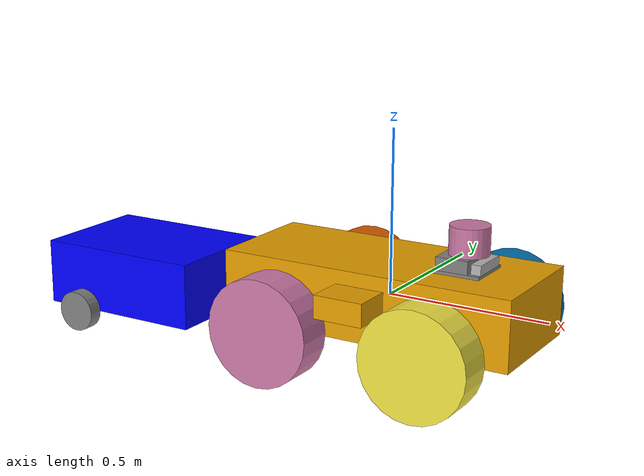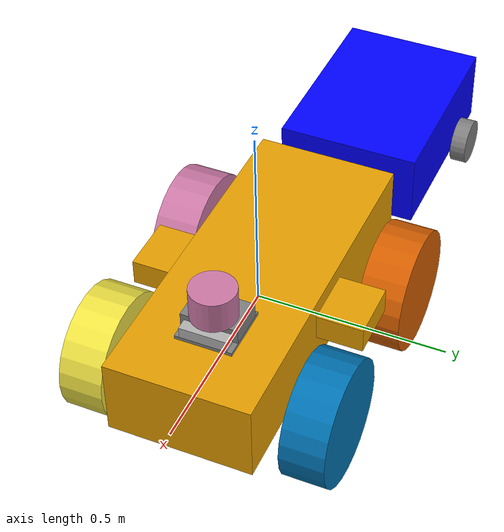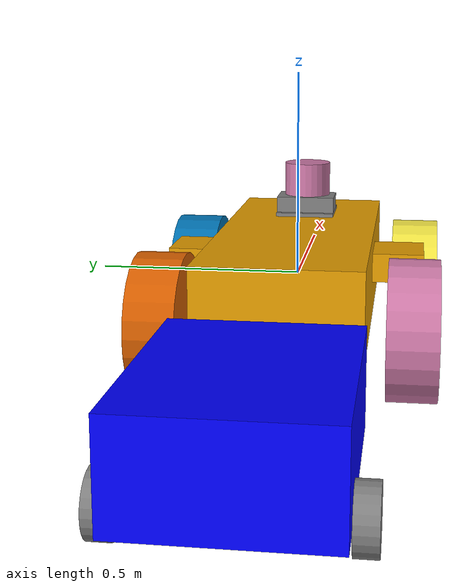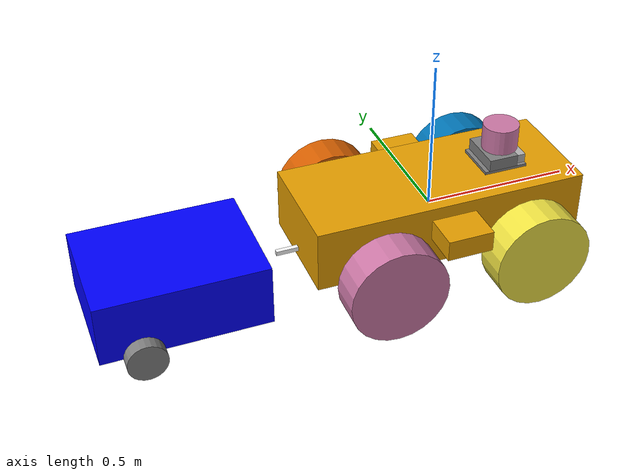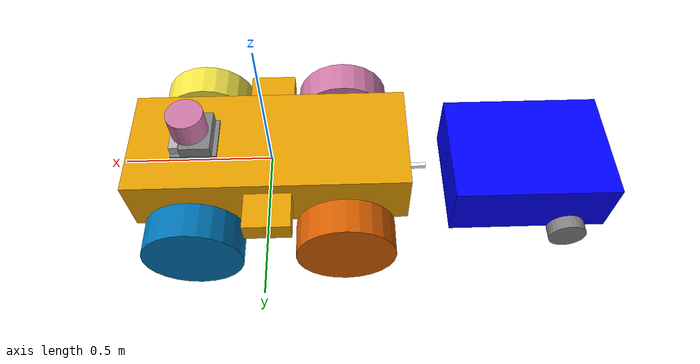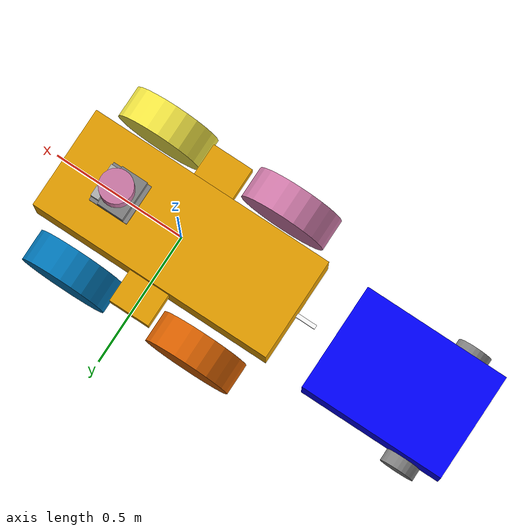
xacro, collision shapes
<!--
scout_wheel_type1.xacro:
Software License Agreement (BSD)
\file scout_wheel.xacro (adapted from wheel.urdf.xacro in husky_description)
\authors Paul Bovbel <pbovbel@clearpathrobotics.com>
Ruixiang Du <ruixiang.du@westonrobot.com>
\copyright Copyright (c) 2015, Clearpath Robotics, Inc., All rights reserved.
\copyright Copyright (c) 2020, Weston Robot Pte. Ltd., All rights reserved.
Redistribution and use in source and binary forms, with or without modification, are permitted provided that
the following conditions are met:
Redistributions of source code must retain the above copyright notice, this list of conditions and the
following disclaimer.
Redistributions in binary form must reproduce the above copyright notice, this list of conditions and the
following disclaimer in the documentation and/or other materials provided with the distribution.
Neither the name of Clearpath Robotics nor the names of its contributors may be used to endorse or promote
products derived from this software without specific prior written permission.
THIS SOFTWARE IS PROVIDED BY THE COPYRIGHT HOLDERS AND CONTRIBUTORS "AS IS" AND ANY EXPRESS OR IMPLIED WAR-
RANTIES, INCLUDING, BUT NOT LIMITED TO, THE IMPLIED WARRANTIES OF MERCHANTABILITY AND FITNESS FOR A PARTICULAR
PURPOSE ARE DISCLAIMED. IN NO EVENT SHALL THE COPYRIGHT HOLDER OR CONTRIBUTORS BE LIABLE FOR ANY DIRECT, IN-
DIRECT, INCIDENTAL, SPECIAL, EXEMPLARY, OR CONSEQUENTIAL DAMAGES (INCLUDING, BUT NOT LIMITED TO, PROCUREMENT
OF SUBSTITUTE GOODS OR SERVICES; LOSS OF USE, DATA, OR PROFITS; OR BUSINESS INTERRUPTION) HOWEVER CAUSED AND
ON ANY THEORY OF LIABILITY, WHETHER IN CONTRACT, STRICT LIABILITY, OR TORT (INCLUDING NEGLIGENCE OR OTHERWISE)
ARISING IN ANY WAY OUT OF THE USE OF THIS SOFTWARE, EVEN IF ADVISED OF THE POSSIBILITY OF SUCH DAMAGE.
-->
<?xml version="1.0"?>

<robot name="scout_v2"
    xmlns:xacro="http://ros.org/wiki/xacro">

    <xacro:arg name="robot_namespace" default="/" />

    <xacro:include filename="$(find scout_nav2_gz)/urdf/scout_v2/scout_wheel_type1.xacro" />
    <xacro:include filename="$(find scout_nav2_gz)/urdf/scout_v2/scout_wheel_type2.xacro" />

    <!-- Variables -->
    <xacro:property name="M_PI" value="3.14159"/>

    <!-- Vehicle Geometries -->
    <xacro:property name="base_x_size" value="0.9250000" />
    <xacro:property name="base_y_size" value="0.380000" />
    <xacro:property name="base_z_size" value="0.210000" />

    <xacro:property name="wheelbase" value="0.498" />
    <xacro:property name="track" value="0.58306" />
    <xacro:property name="wheel_vertical_offset" value="-0.0702" />

    <xacro:property name="wheel_length" value="1.1653e-01" />
    <xacro:property name="wheel_radius" value="1.6459e-01" />
    <xacro:property name="wheel_mass" value="0.6"/>

    <xacro:property name="trailer_wheel_length" value="0.045" />
    <xacro:property name="trailer_wheel_radius" value="0.065" />
    <xacro:property name="trailer_wheel_mass" value="0.6"/>

    <xacro:property name="connector_length" value="0.15"/>
    <xacro:property name="connector_width" value="0.015"/>
    <xacro:property name="connector_height" value="0.015"/>

    <xacro:property name="trailer_length" value="0.55"/>
    <xacro:property name="trailer_width" value="0.4"/>
    <xacro:property name="trailer_height" value="${base_z_size}"/>

    <!-- Define inertial property macros  -->
    <xacro:macro name="box_inertia" params="m w h d">
        <inertial>
        <origin xyz="0 0 0" rpy="${pi/2} 0 ${pi/2}"/>
        <mass value="${m}"/>
        <inertia ixx="${(m/12) * (h*h + d*d)}" ixy="0.0" ixz="0.0" iyy="${(m/12) * (w*w + d*d)}" iyz="0.0" izz="${(m/12) * (w*w + h*h)}"/>
        </inertial>
    </xacro:macro>

    <xacro:macro name="cylinder_inertia" params="m r h">
        <inertial>
        <origin xyz="0 0 0" rpy="${pi/2} 0 0" />
        <mass value="${m}"/>
        <inertia ixx="${(m/12) * (3*r*r + h*h)}" ixy = "0" ixz = "0" iyy="${(m/12) * (3*r*r + h*h)}" iyz = "0" izz="${(m/2) * (r*r)}"/>
        </inertial>
    </xacro:macro>

    <xacro:macro name="sphere_inertia" params="m r">
        <inertial>
        <mass value="${m}"/>
        <inertia ixx="${(2/5) * m * (r*r)}" ixy="0.0" ixz="0.0" iyy="${(2/5) * m * (r*r)}" iyz="0.0" izz="${(2/5) * m * (r*r)}"/>
        </inertial>
    </xacro:macro>

    <xacro:macro name="wheel_inertia" params="mass radius">
        <inertial>
        <mass value="${mass}"/>
        <inertia ixx="${(2/5) * mass * (radius * radius)}" ixy="0" ixz="0"
                    iyy="${(2/5) * mass * (radius * radius)}" iyz="0"
                    izz="${(2/5) * mass * (radius * radius)}" />
        </inertial>
    </xacro:macro>

    <!-- Base link -->
    <link name="base_link">
        <visual>
            <origin xyz="0 0 0" rpy="0 0 0" />
            <geometry>
                <mesh filename="file://$(find scout_nav2_gz)/meshes/scout_v2/base_link.dae" />
            </geometry>
        </visual>
        <collision>
            <origin xyz="0 0 0.008" rpy="0 0 0" />
            <geometry>
                <box size="${base_x_size} ${base_y_size} ${base_z_size}"/>
            </geometry>
        </collision>
        <collision>
            <origin xyz="0 0 ${base_z_size/6}" rpy="0 0 0" />
            <geometry>
                <box size="${base_x_size/6} ${base_y_size*1.65} ${base_z_size/3}"/>
            </geometry>
        </collision>
    </link>

    <link name="base_footprint"/>

    <joint name="base_footprint_joint" type="fixed">
        <origin xyz="0 0 ${wheel_vertical_offset - wheel_radius}" rpy="0 0 0" />
        <parent link="base_link" />
        <child link="base_footprint" />
    </joint>

    <link name="inertial_link">
        <inertial>
            <mass value="40" />
            <origin xyz="0.0 0.0 0.0" />
            <inertia ixx="2.288641" ixy="0" ixz="0" iyy="5.103976" iyz="0" izz="3.431465" />
        </inertial>
    </link>

    <joint name="inertial_joint" type="fixed">
        <origin xyz="0 0 0" rpy="0 0 0" />
        <parent link="base_link" />
        <child link="inertial_link" />
    </joint>

    <!-- Scout wheel macros -->
    <!-- wheel labeled from 0 to 3, conter-clockwise, starting from front right wheel -->
    <!-- motor 1 and 2 (left side) are mechanically installed in a reversed direction -->
    <xacro:scout_wheel_type1 wheel_prefix="front_right">
        <origin xyz="${wheelbase/2} ${-track/2} ${wheel_vertical_offset}" rpy="3.14 0 0" />
    </xacro:scout_wheel_type1>
    <xacro:scout_wheel_type2 wheel_prefix="front_left">
        <origin xyz="${wheelbase/2} ${track/2} ${wheel_vertical_offset}" rpy="3.14 0 0" />
    </xacro:scout_wheel_type2>
    <xacro:scout_wheel_type1 wheel_prefix="rear_left">
        <origin xyz="${-wheelbase/2} ${track/2} ${wheel_vertical_offset}" rpy="3.14 0 0" />
    </xacro:scout_wheel_type1>
    <xacro:scout_wheel_type2 wheel_prefix="rear_right">
        <origin xyz="${-wheelbase/2} ${-track/2} ${wheel_vertical_offset}" rpy="3.14 0 0" />
    </xacro:scout_wheel_type2>

  <!-- Camera stand box -->
  <link name="camera_stand_link">
      <visual>
          <origin xyz="0 0 0" rpy="0 0 0"/>
          <geometry>
              <box size="0.15 0.15 0.01"/> <!-- Adjust size as needed -->
          </geometry>
          <material name="Gray">
              <color rgba="0.5 0.5 0.5 1.0"/>
          </material>
      </visual>
      <collision>
          <origin xyz="0 0 0" rpy="0 0 0"/>
          <geometry>
              <box size="0.15 0.15 0.01"/> <!-- Same size for collision -->
          </geometry>
      </collision>

      <xacro:box_inertia m="0.1" w="0.1" d="0.1" h="0.1"/>

  </link>

  <joint name="camera_stand_joint" type="fixed">
      <parent link="base_link"/>
      <child link="camera_stand_link"/>
      <origin xyz="0.24 0 ${(base_z_size/2) + 0.0127}" rpy="0 0 0"/>
  </joint>

  <!-- Lidar stand box -->
  <link name="lidar_stand_link">
      <visual>
          <origin xyz="0 0 0" rpy="0 0 0"/>
          <geometry>
              <box size="0.1 0.15 0.04"/> <!-- Adjust size as needed -->
          </geometry>
          <material name="Gray">
              <color rgba="0.5 0.5 0.5 1.0"/>
          </material>
      </visual>
      <collision>
          <origin xyz="0 0 0" rpy="0 0 0"/>
          <geometry>
              <box size="0.1 0.15 0.04"/> <!-- Same size for collision -->
          </geometry>
      </collision>

      <xacro:box_inertia m="0.1" w="0.1" d="0.1" h="0.1"/>

  </link>

  <joint name="lidar_stand_joint" type="fixed">
      <parent link="camera_stand_link"/>
      <child link="lidar_stand_link"/>
      <origin xyz="-0.01 0 0.025" rpy="0 0 0"/>
  </joint>

  <!--                TRAILER             -->

  <!-- Trailer wheel macro -->
  <xacro:macro name="trailer_wheel" params="prefix x_reflect y_reflect wheel_offset">
    <link name="${prefix}_link">
      <visual>
        <geometry>
          <cylinder radius="${trailer_wheel_radius}" length="${trailer_wheel_length}"/>
        </geometry>
        <origin xyz="0 0 0" rpy="${pi/2} ${pi/2} 0"/>
        <material name="Gray">
          <color rgba="0.5 0.5 0.5 1.0"/>
        </material>
      </visual>

      <collision>
        <geometry>
          <cylinder radius="${trailer_wheel_radius}" length="${trailer_wheel_length}"/>
        </geometry>
        <origin xyz="0 0 0" rpy="${pi/2} ${pi/2} 0"/>
      </collision>

      <xacro:cylinder_inertia m="${trailer_wheel_mass}" r="${trailer_wheel_radius}" h="${trailer_wheel_length}"/>
    </link>

    <gazebo reference="${prefix}_link">
      <mu1>0.1</mu1>
      <mu2>0.1</mu2>
    </gazebo>

    <joint name="${prefix}_joint" type="continuous">
      <parent link="trailer_link"/>
      <child link="${prefix}_link"/>
      <origin xyz="${(x_reflect * wheel_offset) - (trailer_length/2)} ${y_reflect * (trailer_width / 2 + trailer_wheel_length / 2)} ${-trailer_height / 2}" rpy="0 0 0"/>
      <axis xyz="0 1 0"/>
    </joint>
  </xacro:macro>

<!-- Trailer Connector Link -->
<link name="trailer_connector_link">
  <visual>
    <geometry>
      <box size="${connector_width} ${connector_length} ${connector_height}"/>
    </geometry>
    <origin xyz="-${connector_length/2} 0 0" rpy="0 0 ${pi/2}"/>
    <material name="cyan">
      <color rgba="1 1 1 1"/>
    </material>
  </visual>

  <collision>
    <geometry>
      <box size="${connector_width} ${connector_length} ${connector_height}"/>
    </geometry>
    <origin xyz="0 0 0" rpy="0 0 ${pi/2}"/>
  </collision>

  <xacro:box_inertia m="0.1" w="${connector_width}" d="${connector_length}" h="${connector_height}"/>
</link>

  <!-- Trailer connector revolute joint -->
  <joint name="trailer_connector_joint" type="revolute">
    <parent link="base_link"/>
    <child link="trailer_connector_link"/>
    <origin xyz="${(-base_x_size/2)} 0 -0.065 " rpy="0 0 0"/>
    <axis xyz="0 0 1"/>
    <limit effort="100" velocity="2.0" lower="${-pi/4}" upper="${pi/4}"/>
  </joint>

  <!-- Trailer Link -->
  <link name="trailer_link">
    <visual>
      <geometry>
        <box size="${trailer_length} ${trailer_width} ${trailer_height}"/>
      </geometry>
      <origin xyz="${-(trailer_length/2)} 0 0"/>
      <material name="Blue">
        <color rgba="0 0 1 1"/>
      </material>
    </visual>
    <collision>
      <geometry>
        <box size="${trailer_length} ${trailer_width} ${trailer_height}"/>
      </geometry>
      <origin xyz="${-(trailer_length/2)} 0 0"/>
    </collision>

    <xacro:box_inertia m="5" w="${trailer_width}" d="${trailer_length}" h="${trailer_height}"/>
  </link>

  <!-- Trailer joint -->
  <joint name="trailer_joint" type="fixed">
    <parent link="trailer_connector_link"/>
    <child link="trailer_link"/>
    <origin xyz="${-(connector_length)} 0 0" rpy="0 0 0"/>
    <axis xyz="0 0 1"/>
    <limit effort="100" lower="-3.14159" upper="3.14159" velocity="1"/>
  </joint>

  <!-- Trailer Wheels -->
  <xacro:trailer_wheel prefix="trailer_wheel_lr" x_reflect="-1" y_reflect="1" wheel_offset="${trailer_length / 4}"/>
  <xacro:trailer_wheel prefix="trailer_wheel_rr" x_reflect="-1" y_reflect="-1" wheel_offset="${trailer_length / 4}"/>

    <!-- IMU -->

  <link name="imu_link">
    <visual>
      <geometry>
        <box size="0.01 0.01 0.01"/>
      </geometry>
    </visual>

    <collision>
      <geometry>
        <box size="0.01 0.01 0.01"/>
      </geometry>
    </collision>

    <xacro:box_inertia m="0.1" w="0.1" d="0.1" h="0.1"/>
  </link>

  <joint name="imu_joint" type="fixed">
    <parent link="base_link"/>
    <child link="imu_link"/>
    <origin xyz="0.0 0 0.0"/>
  </joint>

  <gazebo reference="imu_link">
    <sensor name="imu_sensor" type="imu">
      <gz_frame_id>imu_link</gz_frame_id>
      <plugin filename="ignition-gazebo-imu-system" name="ignition::gazebo::systems::Imu">
      </plugin>

      <topic>imu</topic>
      <always_on>true</always_on>
      <update_rate>100</update_rate>
      <visualize>true</visualize>
      <imu>
        <angular_velocity>
          <x>
            <noise type="gaussian">
              <mean>0.0</mean>
              <stddev>2e-4</stddev>
              <bias_mean>0.0000075</bias_mean>
              <bias_stddev>0.0000008</bias_stddev>
            </noise>
          </x>
          <y>
            <noise type="gaussian">
              <mean>0.0</mean>
              <stddev>2e-4</stddev>
              <bias_mean>0.0000075</bias_mean>
              <bias_stddev>0.0000008</bias_stddev>
            </noise>
          </y>
          <z>
            <noise type="gaussian">
              <mean>0.0</mean>
              <stddev>2e-4</stddev>
              <bias_mean>0.0000075</bias_mean>
              <bias_stddev>0.0000008</bias_stddev>
            </noise>
          </z>
        </angular_velocity>
        <linear_acceleration>
          <x>
            <noise type="gaussian">
              <mean>0.0</mean>
              <stddev>1.7e-2</stddev>
              <bias_mean>0.1</bias_mean>
              <bias_stddev>0.001</bias_stddev>
            </noise>
          </x>
          <y>
            <noise type="gaussian">
              <mean>0.0</mean>
              <stddev>1.7e-2</stddev>
              <bias_mean>0.1</bias_mean>
              <bias_stddev>0.001</bias_stddev>
            </noise>
          </y>
          <z>
            <noise type="gaussian">
              <mean>0.0</mean>
              <stddev>1.7e-2</stddev>
              <bias_mean>0.1</bias_mean>
              <bias_stddev>0.001</bias_stddev>
            </noise>
          </z>
        </linear_acceleration>
      </imu>
    </sensor>
  </gazebo>

  <ros2_control name="IgnitionSystem" type="system">
    <hardware>
      <plugin>ign_ros2_control/IgnitionSystem</plugin>
    </hardware>
    <joint name="front_left_wheel">
      <command_interface name="velocity">
        <param name="min">-1</param>
        <param name="max">1</param>
      </command_interface>
      <state_interface name="position"/>
      <state_interface name="velocity"/>
    </joint>
    <joint name="front_right_wheel">
      <command_interface name="velocity">
        <param name="min">-1</param>
        <param name="max">1</param>
      </command_interface>
      <state_interface name="position"/>
      <state_interface name="velocity"/>
    </joint>
    <joint name="rear_left_wheel">
      <command_interface name="velocity">
        <param name="min">-1</param>
        <param name="max">1</param>
      </command_interface>
      <state_interface name="position"/>
      <state_interface name="velocity"/>
    </joint>
    <joint name="rear_right_wheel">
      <command_interface name="velocity">
        <param name="min">-1</param>
        <param name="max">1</param>
      </command_interface>
      <state_interface name="position"/>
      <state_interface name="velocity"/>
    </joint>
  </ros2_control>

  <gazebo>
    <plugin filename="ign_ros2_control-system" name="ign_ros2_control::IgnitionROS2ControlPlugin">
      <parameters>$(find scout_nav2_gz)/config/diff_drive_controller_velocity.yaml</parameters>
    </plugin>
  </gazebo>

  <!-- LIDAR -->

  <link name="lidar_link">
    <inertial>
      <origin xyz="0 0 0" rpy="0 0 0"/>
      <mass value="0.125"/>
      <inertia ixx="0.001"  ixy="0"  ixz="0" iyy="0.001" iyz="0" izz="0.001" />
    </inertial>

    <collision>
      <origin xyz="0 0 0" rpy="0 0 0"/>
      <geometry>
        <cylinder radius="0.06" length="0.086"/>
      </geometry>
    </collision>

    <visual>
      <origin xyz="0 0 0" rpy="0 0 0"/>
      <geometry>
        <cylinder radius="0.06" length="0.086"/>
      </geometry>
    </visual>
  </link>

  <joint name="lidar_joint" type="fixed">
        <parent link="base_link"/>
        <child link="lidar_link"/>
        <origin xyz="0.25 0 ${(base_z_size/2) + 0.0127 + 0.025 + 0.02 + (0.086/2)}" rpy="0 0 0"/>
  </joint>

  <!-- Based on the VLP 16 Lidar -->
  <gazebo reference="lidar_link">
    <sensor name="lidar" type="gpu_lidar">
      <gz_frame_id>lidar_link</gz_frame_id>
      <topic>scan</topic>
      <always_on>true</always_on>
      <visualize>true</visualize>
      <update_rate>20</update_rate>
      <lidar>
        <scan>
          <horizontal>
            <samples>360</samples>
            <resolution>1.000000</resolution>
            <min_angle>0.000000</min_angle>
            <max_angle>6.280000</max_angle>
          </horizontal>
          <vertical>
            <samples>16</samples> <!-- VLP-16 specific -->
            <min_angle>-0.261799</min_angle> <!-- -15° in radians -->
            <max_angle>0.261799</max_angle> <!-- 15° in radians -->
          </vertical>
        </scan>
        <range>
          <min>0.150000</min>
          <max>100</max>
          <resolution>0.01</resolution>
        </range>
        <noise>
          <type>gaussian</type>
          <mean>0.0</mean>
          <stddev>0.01</stddev>
        </noise>
      </lidar>
    </sensor>
  </gazebo>

  <link name="camera_link">
    <visual>
      <origin xyz="0 0 0" rpy="0 0 0"/>
      <geometry>
        <box size="0.030 0.124 0.030"/>
      </geometry>
    </visual>

    <collision>
      <origin xyz="0 0 0" rpy="0 0 0"/>
      <geometry>
        <box size="0.030 0.124 0.030"/>
      </geometry>
    </collision>

    <inertial>
      <origin xyz="0 0 0" rpy="0 0 0"/>
      <mass value="0.135"/>
      <inertia ixx="${(1/12) * 0.135 * ((0.124  * 0.124)  + (0.030 * 0.030))}" ixy="0.0" ixz="0.0"
                iyy="${(1/12) * 0.135 * ((0.030 * 0.030) + (0.030 * 0.030))}" iyz="0.0"
                izz="${(1/12) * 0.135 * ((0.030 * 0.030) + (0.124  * 0.124))}"/>
    </inertial>
  </link>

  <joint name="camera_joint" type="fixed">
    <parent link="camera_stand_link"/>
    <child link="camera_link"/>
    <origin xyz="0.06 0 0.02" rpy="0 0 0"/>
  </joint>

  <link name="camera_frame"/>

  <joint name="camera_frame_joint" type="fixed">
    <origin xyz="0 0 0" rpy="${-pi/2} 0 ${-pi/2}"/>
    <parent link="camera_link"/>
    <child link="camera_frame"/>
  </joint>

  <gazebo reference="camera_link">
    <sensor name="robot_cam" type="camera">
      <camera>
        <horizontal_fov>1.204</horizontal_fov>  <!-- Horizontal FOV 69° -->
        <vertical_fov>0.73</vertical_fov> <!-- Vertical FOV 42° -->
        <image>
          <width>1920</width>
          <height>1080</height>
        </image>
        <clip>
          <near>0.2</near>
          <far>10</far>
        </clip>
      </camera>
      <always_on>1</always_on>
      <update_rate>30</update_rate>
      <visualize>true</visualize>
      <topic>robot_cam</topic>
      <enable_metrics>true</enable_metrics>
    </sensor>
    <sensor name="depth_camera1" type="depth_camera">
      <update_rate>90</update_rate>
      <topic>depth_camera</topic>
      <visualize>true</visualize>
      <alwaysOn>true</alwaysOn>
      <camera>
        <horizontal_fov>1.518</horizontal_fov>  <!-- Horizontal FOV 87° -->
        <vertical_fov>1.01</vertical_fov> <!-- Vertical FOV 58° -->
        <image>
          <width>1280</width>
          <height>720</height>
          <format>R_FLOAT32</format>
        </image>
        <clip>
          <near>0.2</near>
          <far>10</far>
        </clip>
      </camera>
    </sensor>
  </gazebo>
</robot>

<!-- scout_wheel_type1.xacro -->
<robot xmlns:xacro="http://ros.org/wiki/xacro" name="scout_wheel">

    <xacro:macro name="scout_wheel_type1" params="wheel_prefix *joint_pose">
        <link name="${wheel_prefix}_wheel_link">
            <inertial>
                <mass value="3" />
                <origin xyz="0 0 0" />
                <inertia ixx="0.7171" ixy="0" ixz="0" iyy="0.1361" iyz="0" izz="0.7171" />
            </inertial>
            <visual>
                <origin xyz="0 0 0" rpy="0 0 0" />
                <geometry>
                    <mesh filename="file://$(find scout_nav2_gz)/meshes/scout_v2/wheel_type1.dae" />
                </geometry>
            </visual>
            <collision>
                <origin xyz="0 0 0" rpy="${M_PI/2} 0 0" />
                <geometry>
                    <cylinder length="${wheel_length}" radius="${wheel_radius}" />
                </geometry>
            </collision>
        </link>

        <gazebo reference="${wheel_prefix}_wheel_link">
            <mu1>0.9</mu1>
            <mu2>0.7</mu2>
            <kp>1000000000.0</kp>
            <kd>0.0</kd>
            <minDepth>0.001</minDepth>
            <fdir1>1 0 0</fdir1>
        </gazebo>

        <joint name="${wheel_prefix}_wheel" type="continuous">
            <parent link="base_link"/>
            <child link="${wheel_prefix}_wheel_link"/>
            <xacro:insert_block name="joint_pose"/>
            <axis xyz="0 -1 0" rpy="0 0 0" />
        </joint>
    </xacro:macro>

</robot>

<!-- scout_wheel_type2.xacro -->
<robot xmlns:xacro="http://ros.org/wiki/xacro" name="scout_wheel">

    <xacro:macro name="scout_wheel_type2" params="wheel_prefix *joint_pose">
        <link name="${wheel_prefix}_wheel_link">
            <inertial>
                <mass value="3" />
                <origin xyz="0 0 0" />
                <inertia ixx="0.7171" ixy="0" ixz="0" iyy="0.1361" iyz="0" izz="0.7171" />
            </inertial>
            <visual>
                <origin xyz="0 0 0" rpy="0 0 0" />
                <geometry>
                    <mesh filename="file://$(find scout_nav2_gz)/meshes/scout_v2/wheel_type2.dae" />

                </geometry>
            </visual>
            <collision>
                <origin xyz="0 0 0" rpy="${M_PI/2} 0 0" />
                <geometry>
                    <cylinder length="${wheel_length}" radius="${wheel_radius}" />
                </geometry>
            </collision>
        </link>

        <gazebo reference="${wheel_prefix}_wheel_link">
            <mu1>0.9</mu1>
            <mu2>0.7</mu2>
            <kp>1000000000.0</kp>
            <kd>0.0</kd>
            <minDepth>0.001</minDepth>
            <fdir1>1 0 0</fdir1>
        </gazebo>

        <joint name="${wheel_prefix}_wheel" type="continuous">
            <parent link="base_link"/>
            <child link="${wheel_prefix}_wheel_link"/>
            <xacro:insert_block name="joint_pose"/>
            <axis xyz="0 -1 0" rpy="0 0 0" />
        </joint>
    </xacro:macro>

</robot>
